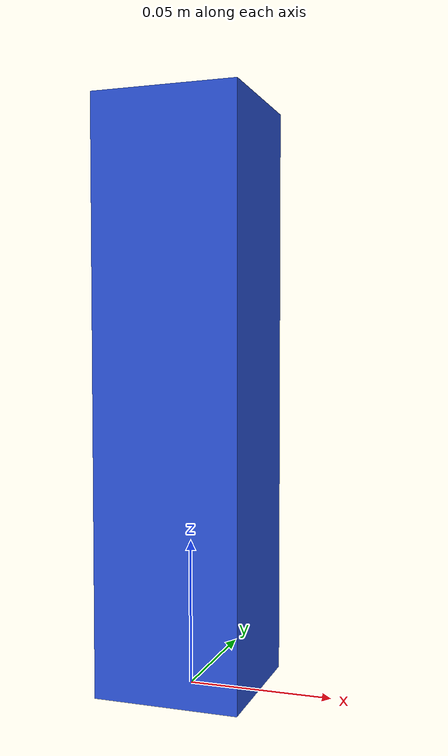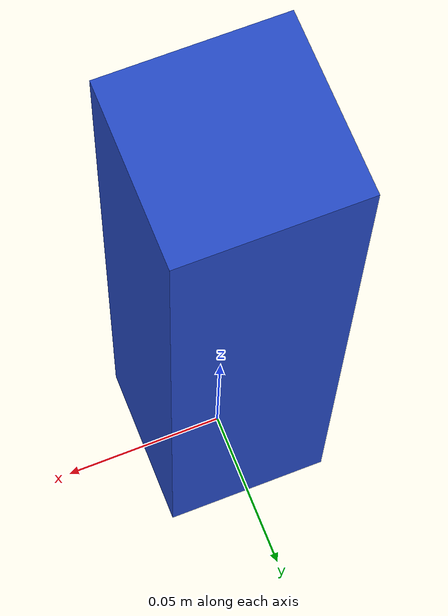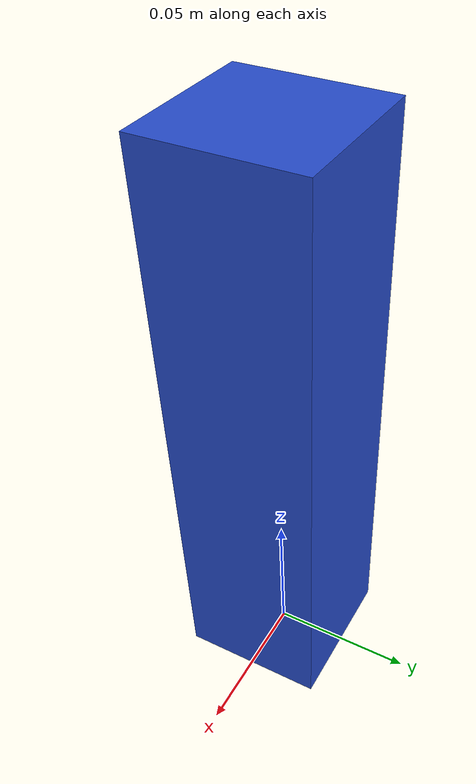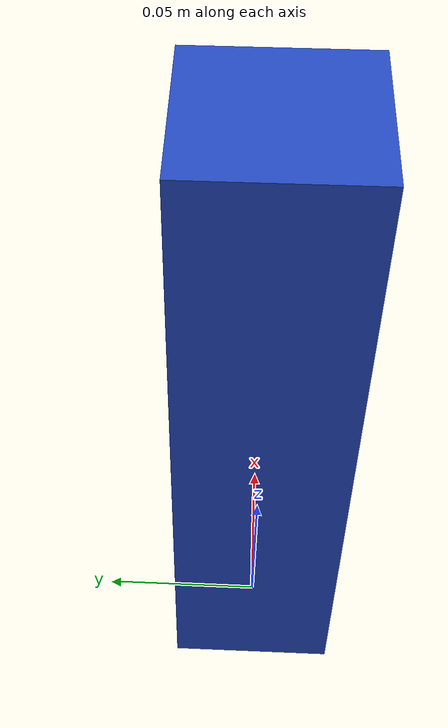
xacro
<robot name="simple_box">

  <link name="my_box">
    <inertial>
      <mass value="1.0" />
      <!-- center of mass (com) is defined w.r.t. link local coordinate system -->
      <origin xyz="0.0 0.0 0.0" />
      <inertia  ixx="1.0" ixy="0.0"  ixz="0.0"  iyy="1.0"  iyz="0.0"  izz="1.0" />
    </inertial>
    <visual>
      <!-- visual origin is defined w.r.t. link local coordinate system -->
      <origin xyz="0 0 0.1" rpy="0 0 0" />
      <geometry>
        <box size="0.05 0.05 0.20" />
      </geometry>
    </visual>
    <collision>
      <!-- collision origin is defined w.r.t. link local coordinate system -->
      <origin xyz="0 0 0.1" rpy="0 0 0 " />
      <geometry>
        <box size="0.05 0.05 0.20" />
      </geometry>
    </collision>
  </link>

  <gazebo reference="my_box">
    <material>Gazebo/Blue</material>
    <turnGravityOff>false</turnGravityOff>
    <mu1>50.0</mu1>
    <mu2>50.0</mu2>
    <kp>1000000.0</kp>
    <kd>1.0</kd>
  </gazebo>

</robot>
